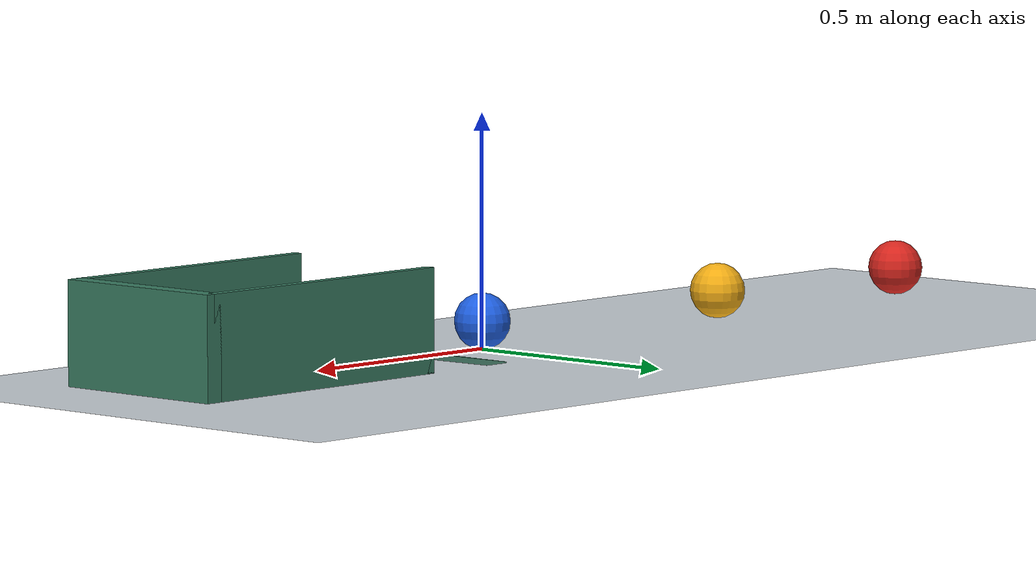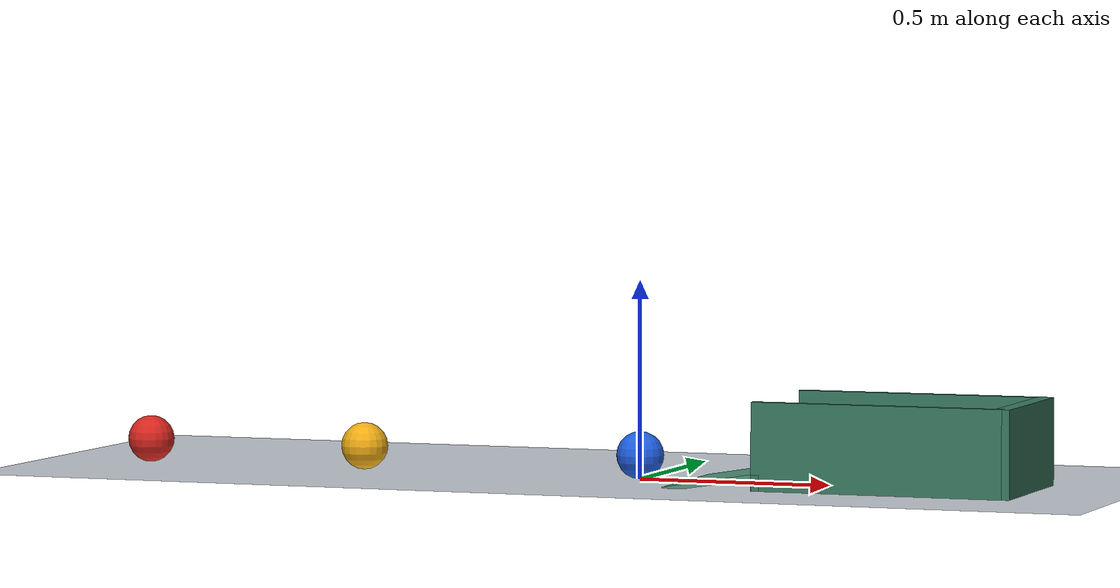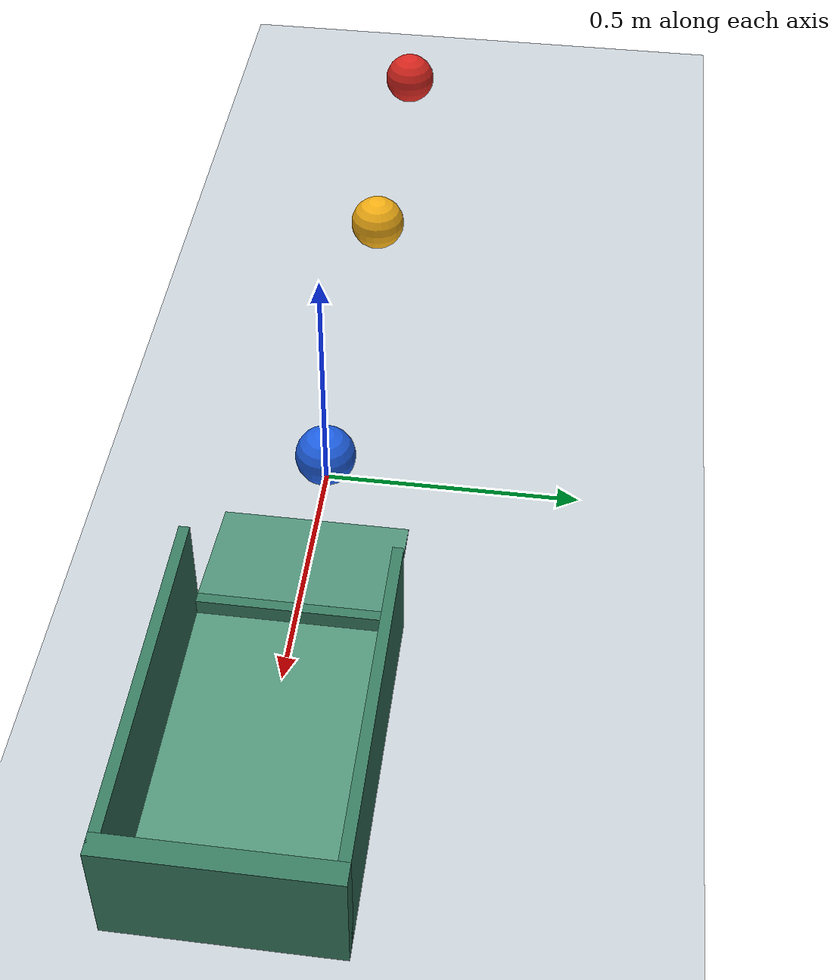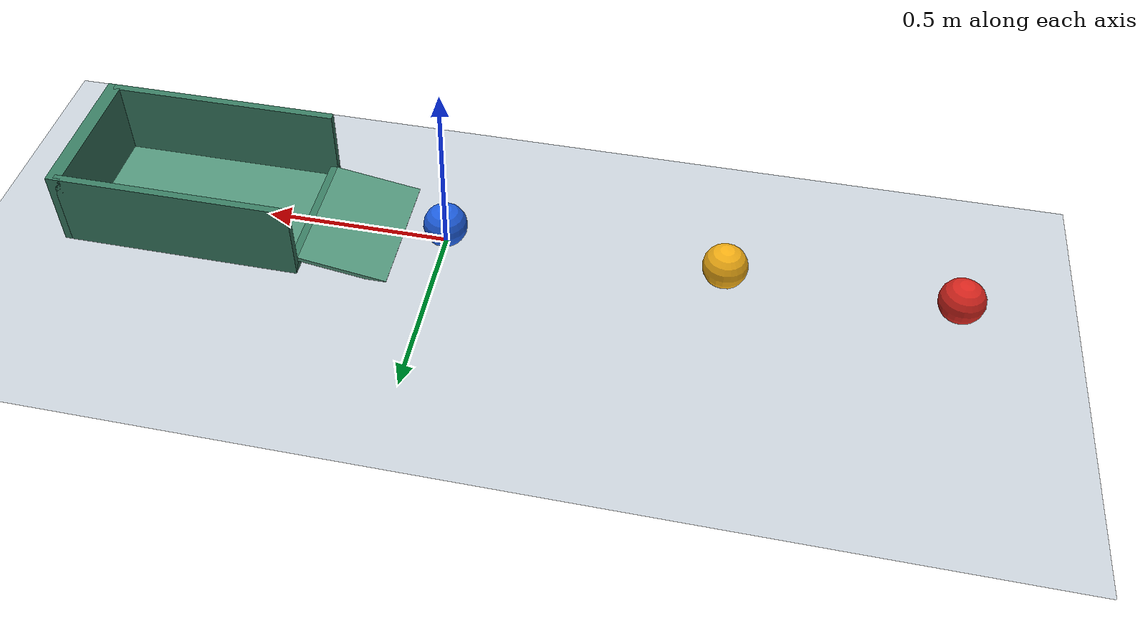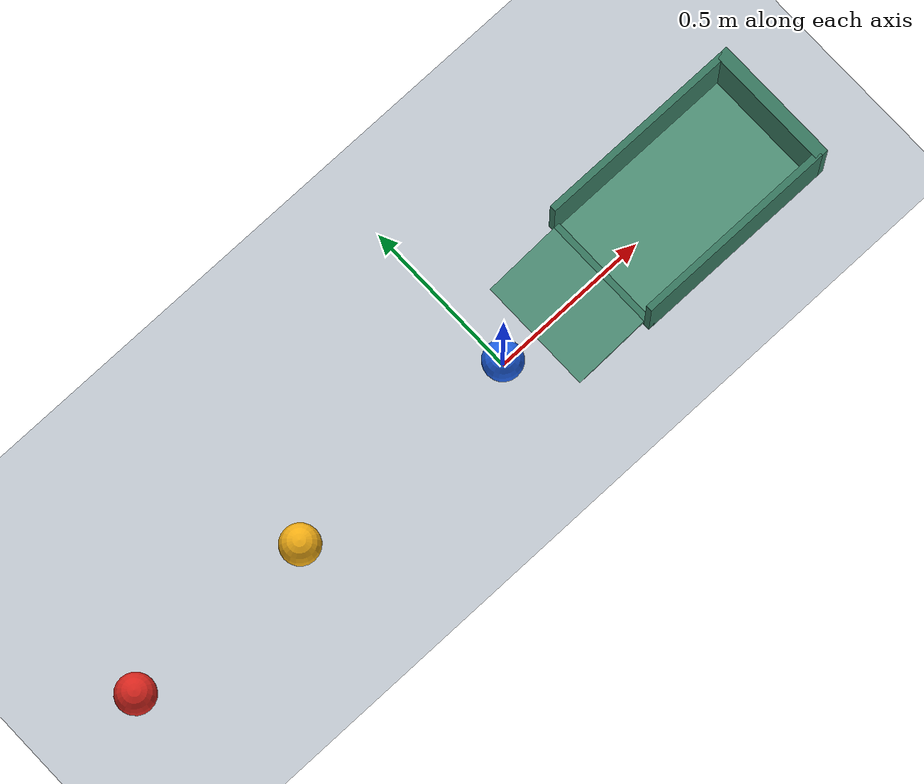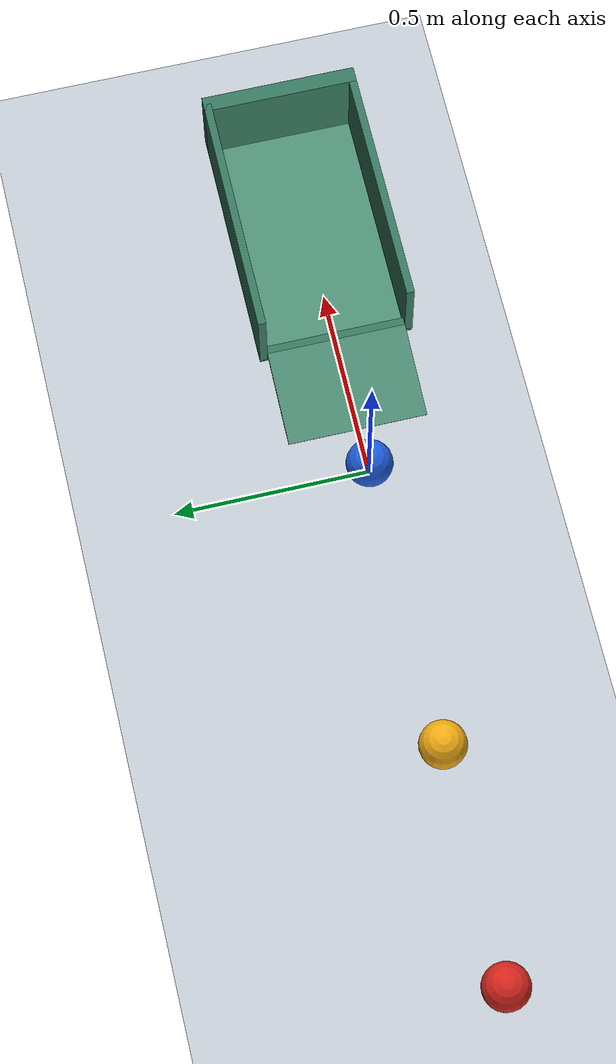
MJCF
<mujoco model="three_balls_into_a_cup">
  <compiler angle="degree" inertiafromgeom="true"/>
  <option timestep="0.002" gravity="0 0 -9.81" integrator="implicitfast" solver="Newton" iterations="80" cone="elliptic"/>
  <size nconmax="200" njmax="1000"/>

  <visual>
    <headlight ambient="0.35 0.35 0.35" diffuse="0.7 0.7 0.7" specular="0.2 0.2 0.2"/>
    <rgba haze="0.85 0.89 0.94 1"/>
  </visual>

  <worldbody>
    <light name="overhead_light" pos="-0.3 -1.5 3" dir="0.1 0.3 -1" diffuse="0.9 0.9 0.9"/>
    <camera name="overview" pos="-0.3 -3.4 2.4" xyaxes="1 0 0 0 0.577 0.817"/>

    <geom name="floor" type="plane" size="5 3 0.1" rgba="0.78 0.81 0.84 1" condim="6" priority="1" friction="0.5 0.005 0.008" solref="0.01 1" solimp="0.95 0.99 0.001"/>

    <body name="ball1" pos="-1.35 0 0.06">
      <freejoint name="ball1_free"/>
      <geom name="ball1_geom" type="sphere" size="0.06" mass="0.25" rgba="0.85 0.15 0.12 1" condim="6" friction="0.5 0.005 0.008" solref="0.01 1" solimp="0.95 0.99 0.001"/>
    </body>

    <body name="ball2" pos="-0.75 0 0.06">
      <freejoint name="ball2_free"/>
      <geom name="ball2_geom" type="sphere" size="0.06" mass="0.25" rgba="0.95 0.68 0.08 1" condim="6" friction="0.5 0.005 0.008" solref="0.01 1" solimp="0.95 0.99 0.001"/>
    </body>

    <body name="ball3" pos="0 0 0.06">
      <freejoint name="ball3_free"/>
      <geom name="ball3_geom" type="sphere" size="0.06" mass="0.25" rgba="0.12 0.38 0.9 1" condim="6" friction="0.5 0.005 0.008" solref="0.01 1" solimp="0.95 0.99 0.001"/>
    </body>

    <!-- Open-top receiving cup, with a short ramp over its low front lip. -->
    <body name="cup" pos="0 0 0">
      <geom name="cup_ramp" type="box" pos="0.240986 0 0.014082" euler="0 -9.462322 0" size="0.121655 0.18 0.006" rgba="0.32 0.58 0.48 1" condim="6" priority="2" friction="0.8 0.01 0.02" solref="0.01 1" solimp="0.95 0.99 0.001"/>
      <geom name="cup_front_lip" type="box" pos="0.37 0 0.02" size="0.01 0.20 0.02" rgba="0.22 0.48 0.38 1" condim="6" priority="2" friction="0.8 0.01 0.02" solref="0.01 1" solimp="0.95 0.99 0.001"/>
      <geom name="cup_bottom" type="box" pos="0.68 0 0.004" size="0.30 0.18 0.004" rgba="0.32 0.58 0.48 1" condim="6" priority="2" friction="0.8 0.01 0.02" solref="0.01 1" solimp="0.95 0.99 0.001"/>
      <geom name="cup_left_wall" type="box" pos="0.68 0.19 0.11" size="0.32 0.01 0.11" rgba="0.22 0.48 0.38 1" condim="6" priority="2" friction="0.8 0.01 0.02" solref="0.01 1" solimp="0.95 0.99 0.001"/>
      <geom name="cup_right_wall" type="box" pos="0.68 -0.19 0.11" size="0.32 0.01 0.11" rgba="0.22 0.48 0.38 1" condim="6" priority="2" friction="0.8 0.01 0.02" solref="0.01 1" solimp="0.95 0.99 0.001"/>
      <geom name="cup_back_wall" type="box" pos="1.0 0 0.11" size="0.02 0.20 0.11" rgba="0.22 0.48 0.38 1" condim="6" priority="2" friction="0.8 0.01 0.02" solref="0.01 1" solimp="0.95 0.99 0.001"/>
    </body>
  </worldbody>

  <!-- Resilient, frictionless ball-to-ball impacts transfer forward motion. -->
  <contact>
    <pair name="ball1_ball2_contact" geom1="ball1_geom" geom2="ball2_geom" condim="1" solref="-20000 -25" solimp="0.97 0.99 0.001"/>
    <pair name="ball2_ball3_contact" geom1="ball2_geom" geom2="ball3_geom" condim="1" solref="-20000 -25" solimp="0.97 0.99 0.001"/>
    <pair name="ball1_ball3_contact" geom1="ball1_geom" geom2="ball3_geom" condim="1" solref="-20000 -25" solimp="0.97 0.99 0.001"/>
  </contact>

  <!-- Ball1 begins rolling along +x; the other two balls begin stationary. -->
  <keyframe>
    <key name="start" qpos="-1.35 0 0.06 1 0 0 0 -0.75 0 0.06 1 0 0 0 0 0 0.06 1 0 0 0" qvel="4 0 0 0 66.666667 0 0 0 0 0 0 0 0 0 0 0 0 0"/>
  </keyframe>
</mujoco>
